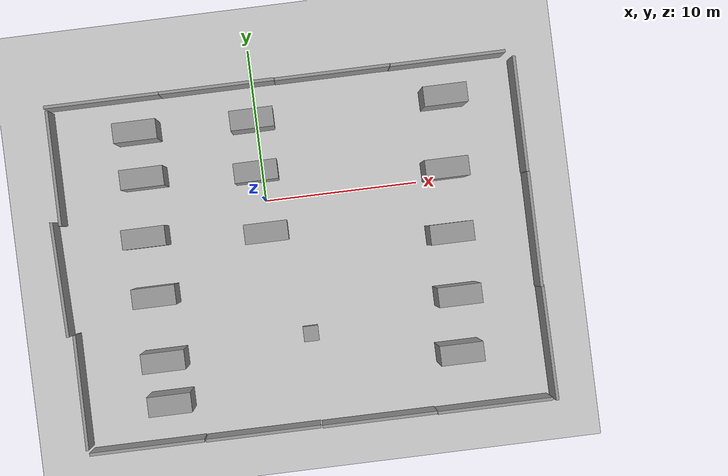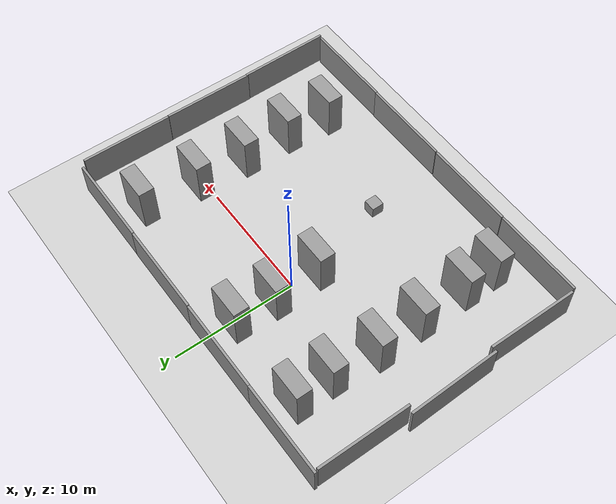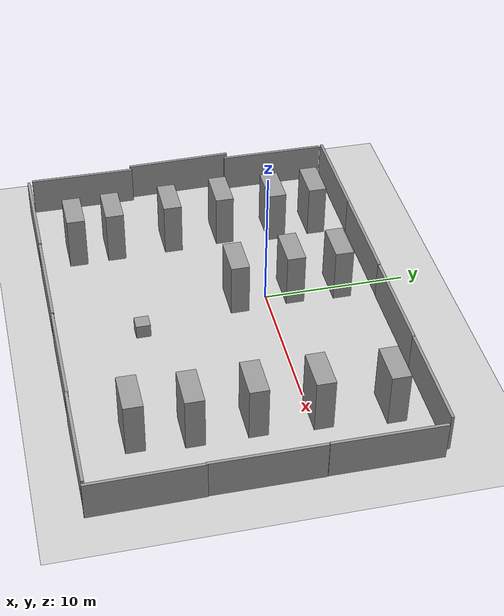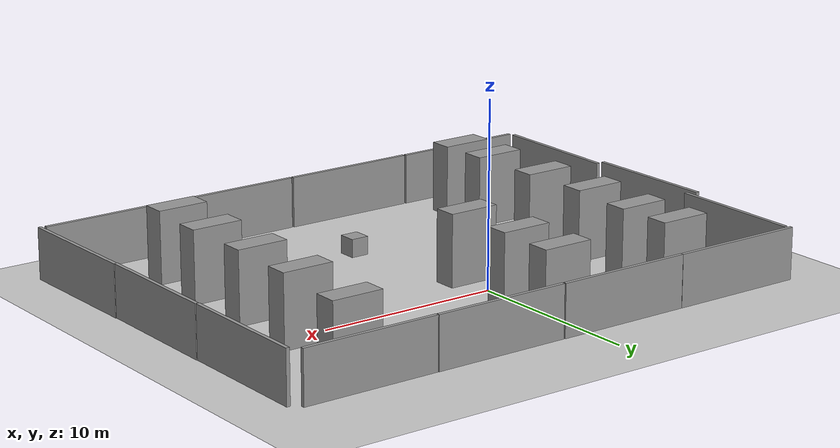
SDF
<sdf version="1.6">
 <world name="default">
  <light name="sun" type="directional">
   <pose>0 0 10 0 -0 0</pose>
   <diffuse>0.8 0.8 0.8 1</diffuse>
   <specular>0.2 0.2 0.2 1</specular>
   <attenuation>
    <range>1000</range>
    <constant>0.9</constant>
    <linear>0.01</linear>
    <quadratic>0.001</quadratic>
   </attenuation>
   <direction>-0.5 0.1 -0.9</direction>
  </light>
  <model name="ground_plane">
   <static>1</static>
   <link name="link">
    <collision name="collision">
     <geometry><plane><normal>0 0 1</normal><size>100 100</size></plane></geometry>
     <surface><friction><ode><mu>100</mu><mu2>50</mu2></ode></friction></surface>
    </collision>
    <visual name="visual">
     <cast_shadows>0</cast_shadows>
     <geometry><plane><normal>0 0 1</normal><size>100 100</size></plane></geometry>
     <material>
      <script><uri>file://media/materials/scripts/gazebo.material</uri><name>Gazebo/Grey</name></script>
     </material>
    </visual>
    <velocity_decay><linear>0</linear><angular>0</angular></velocity_decay>
   </link>
  </model>
  <physics name="default_physics" default="0" type="ode">
   <max_step_size>0.001</max_step_size>
   <real_time_factor>1</real_time_factor>
   <real_time_update_rate>1000</real_time_update_rate>
  </physics>
  <scene><ambient>0.4 0.4 0.4 1</ambient><background>0.7 0.7 0.7 1</background><shadows>1</shadows></scene>
  <spherical_coordinates>
   <surface_model>EARTH_WGS84</surface_model>
   <latitude_deg>0</latitude_deg>
   <longitude_deg>0</longitude_deg>
   <elevation>0</elevation>
   <heading_deg>0</heading_deg>
  </spherical_coordinates>
  <model name="grey_wall">
   <static>1</static>
   <link name="link">
    <pose>0 0 1.4 0 -0 0</pose>
    <collision name="collision"><geometry><box><size>7.5 0.2 2.8</size></box></geometry></collision>
    <visual name="visual">
     <cast_shadows>0</cast_shadows>
     <geometry><box><size>7.5 0.2 2.8</size></box></geometry>
     <material>
      <script>
       <uri>model://grey_wall/materials/scripts</uri>
       <uri>model://grey_wall/materials/textures</uri>
       <name>vrc/grey_wall</name>
      </script>
     </material>
    </visual>
    <velocity_decay><linear>0</linear><angular>0</angular></velocity_decay>
   </link>
   <pose>-9.77961 7.69556 0 0 -0 0</pose>
  </model>
  <model name="grey_wall_0">
   <static>1</static>
   <link name="link">
    <pose>0 0 1.4 0 -0 0</pose>
    <collision name="collision"><geometry><box><size>7.5 0.2 2.8</size></box></geometry></collision>
    <visual name="visual">
     <cast_shadows>0</cast_shadows>
     <geometry><box><size>7.5 0.2 2.8</size></box></geometry>
     <material>
      <script>
       <uri>model://grey_wall/materials/scripts</uri>
       <uri>model://grey_wall/materials/textures</uri>
       <name>vrc/grey_wall</name>
      </script>
     </material>
    </visual>
    <velocity_decay><linear>0</linear><angular>0</angular></velocity_decay>
   </link>
   <pose>5.27661 7.66326 0 0 -0 0</pose>
  </model>
  <model name="grey_wall_1">
   <static>1</static>
   <link name="link">
    <pose>0 0 1.4 0 -0 0</pose>
    <collision name="collision"><geometry><box><size>7.5 0.2 2.8</size></box></geometry></collision>
    <visual name="visual">
     <cast_shadows>0</cast_shadows>
     <geometry><box><size>7.5 0.2 2.8</size></box></geometry>
     <material>
      <script>
       <uri>model://grey_wall/materials/scripts</uri>
       <uri>model://grey_wall/materials/textures</uri>
       <name>vrc/grey_wall</name>
      </script>
     </material>
    </visual>
    <velocity_decay><linear>0</linear><angular>0</angular></velocity_decay>
   </link>
   <pose>-2 -14.9713 0 0 -0 0</pose>
  </model>
  <model name="grey_wall_2">
   <static>1</static>
   <link name="link">
    <pose>0 0 1.4 0 -0 0</pose>
    <collision name="collision"><geometry><box><size>7.5 0.2 2.8</size></box></geometry></collision>
    <visual name="visual">
     <cast_shadows>0</cast_shadows>
     <geometry><box><size>7.5 0.2 2.8</size></box></geometry>
     <material>
      <script>
       <uri>model://grey_wall/materials/scripts</uri>
       <uri>model://grey_wall/materials/textures</uri>
       <name>vrc/grey_wall</name>
      </script>
     </material>
    </visual>
    <velocity_decay><linear>0</linear><angular>0</angular></velocity_decay>
   </link>
   <pose>-13.3992 -10.9229 0 0 0 -1.57722</pose>
  </model>
  <model name="grey_wall_3">
   <static>1</static>
   <link name="link">
    <pose>0 0 1.4 0 -0 0</pose>
    <collision name="collision"><geometry><box><size>7.5 0.2 2.8</size></box></geometry></collision>
    <visual name="visual">
     <cast_shadows>0</cast_shadows>
     <geometry><box><size>7.5 0.2 2.8</size></box></geometry>
     <material>
      <script>
       <uri>model://grey_wall/materials/scripts</uri>
       <uri>model://grey_wall/materials/textures</uri>
       <name>vrc/grey_wall</name>
      </script>
     </material>
    </visual>
    <velocity_decay><linear>0</linear><angular>0</angular></velocity_decay>
   </link>
   <pose>-13.3759 3.69988 0 0 -0 1.5682</pose>
  </model>
  <model name="grey_wall_4">
   <static>1</static>
   <link name="link">
    <pose>0 0 1.4 0 -0 0</pose>
    <collision name="collision"><geometry><box><size>7.5 0.2 2.8</size></box></geometry></collision>
    <visual name="visual">
     <cast_shadows>0</cast_shadows>
     <geometry><box><size>7.5 0.2 2.8</size></box></geometry>
     <material>
      <script>
       <uri>model://grey_wall/materials/scripts</uri>
       <uri>model://grey_wall/materials/textures</uri>
       <name>vrc/grey_wall</name>
      </script>
     </material>
    </visual>
    <velocity_decay><linear>0</linear><angular>0</angular></velocity_decay>
   </link>
   <pose>17.044 3.50827 0 0 -0 1.56755</pose>
  </model>
  <model name="grey_wall_5">
   <static>1</static>
   <link name="link">
    <pose>0 0 1.4 0 -0 0</pose>
    <collision name="collision"><geometry><box><size>7.5 0.2 2.8</size></box></geometry></collision>
    <visual name="visual">
     <cast_shadows>0</cast_shadows>
     <geometry><box><size>7.5 0.2 2.8</size></box></geometry>
     <material>
      <script>
       <uri>model://grey_wall/materials/scripts</uri>
       <uri>model://grey_wall/materials/textures</uri>
       <name>vrc/grey_wall</name>
      </script>
     </material>
    </visual>
    <velocity_decay><linear>0</linear><angular>0</angular></velocity_decay>
   </link>
   <pose>17.046 -4.01974 0 0 -0 1.56663</pose>
  </model>
  <model name="grey_wall_6">
   <static>1</static>
   <link name="link">
    <pose>0 0 1.4 0 -0 0</pose>
    <collision name="collision"><geometry><box><size>7.5 0.2 2.8</size></box></geometry></collision>
    <visual name="visual">
     <cast_shadows>0</cast_shadows>
     <geometry><box><size>7.5 0.2 2.8</size></box></geometry>
     <material>
      <script>
       <uri>model://grey_wall/materials/scripts</uri>
       <uri>model://grey_wall/materials/textures</uri>
       <name>vrc/grey_wall</name>
      </script>
     </material>
    </visual>
    <velocity_decay><linear>0</linear><angular>0</angular></velocity_decay>
   </link>
   <pose>17.1048 -11.4251 0 0 -0 1.57886</pose>
  </model>
  <gravity>0 0 -9.8</gravity>
  <magnetic_field>6e-06 2.3e-05 -4.2e-05</magnetic_field>
  <atmosphere type="adiabatic"/>
  <model name="grey_wall_clone">
   <static>1</static>
   <link name="link">
    <pose>0 0 1.4 0 -0 0</pose>
    <collision name="collision"><geometry><box><size>7.5 0.2 2.8</size></box></geometry></collision>
    <visual name="visual">
     <cast_shadows>0</cast_shadows>
     <geometry><box><size>7.5 0.2 2.8</size></box></geometry>
     <material>
      <script>
       <uri>model://grey_wall/materials/scripts</uri>
       <uri>model://grey_wall/materials/textures</uri>
       <name>vrc/grey_wall</name>
      </script>
     </material>
    </visual>
    <velocity_decay><linear>0</linear><angular>0</angular></velocity_decay>
   </link>
   <pose>12.8069 7.6455 0 0 -0 0</pose>
  </model>
  <model name="grey_wall_clone_0">
   <static>1</static>
   <link name="link">
    <pose>0 0 1.4 0 -0 0</pose>
    <collision name="collision"><geometry><box><size>7.5 0.2 2.8</size></box></geometry></collision>
    <visual name="visual">
     <cast_shadows>0</cast_shadows>
     <geometry><box><size>7.5 0.2 2.8</size></box></geometry>
     <material>
      <script>
       <uri>model://grey_wall/materials/scripts</uri>
       <uri>model://grey_wall/materials/textures</uri>
       <name>vrc/grey_wall</name>
      </script>
     </material>
    </visual>
    <velocity_decay><linear>0</linear><angular>0</angular></velocity_decay>
   </link>
   <pose>5.58895 -15.0018 0 0 -0 0</pose>
  </model>
  <model name="grey_wall_clone_1">
   <static>1</static>
   <link name="link">
    <pose>0 0 1.4 0 -0 0</pose>
    <collision name="collision"><geometry><box><size>7.5 0.2 2.8</size></box></geometry></collision>
    <visual name="visual">
     <cast_shadows>0</cast_shadows>
     <geometry><box><size>7.5 0.2 2.8</size></box></geometry>
     <material>
      <script>
       <uri>model://grey_wall/materials/scripts</uri>
       <uri>model://grey_wall/materials/textures</uri>
       <name>vrc/grey_wall</name>
      </script>
     </material>
    </visual>
    <velocity_decay><linear>0</linear><angular>0</angular></velocity_decay>
   </link>
   <pose>13.098 -15.0411 0 0 -0 0</pose>
  </model>
  <model name="grey_wall_clone_2">
   <static>1</static>
   <link name="link">
    <pose>0 0 1.4 0 -0 0</pose>
    <collision name="collision"><geometry><box><size>7.5 0.2 2.8</size></box></geometry></collision>
    <visual name="visual">
     <cast_shadows>0</cast_shadows>
     <geometry><box><size>7.5 0.2 2.8</size></box></geometry>
     <material>
      <script>
       <uri>model://grey_wall/materials/scripts</uri>
       <uri>model://grey_wall/materials/textures</uri>
       <name>vrc/grey_wall</name>
      </script>
     </material>
    </visual>
    <velocity_decay><linear>0</linear><angular>0</angular></velocity_decay>
   </link>
   <pose>-2.27352 7.68827 0 0 -0 0</pose>
  </model>
  <model name="grey_wall_clone_3">
   <static>1</static>
   <link name="link">
    <pose>0 0 1.4 0 -0 0</pose>
    <collision name="collision"><geometry><box><size>7.5 0.2 2.8</size></box></geometry></collision>
    <visual name="visual">
     <cast_shadows>0</cast_shadows>
     <geometry><box><size>7.5 0.2 2.8</size></box></geometry>
     <material>
      <script>
       <uri>model://grey_wall/materials/scripts</uri>
       <uri>model://grey_wall/materials/textures</uri>
       <name>vrc/grey_wall</name>
      </script>
     </material>
    </visual>
    <velocity_decay><linear>0</linear><angular>0</angular></velocity_decay>
   </link>
   <pose>-9.57517 -14.9459 0 0 -0 0</pose>
  </model>
  <model name="grey_wall_clone_4">
   <static>1</static>
   <link name="link">
    <pose>0 0 1.4 0 -0 0</pose>
    <collision name="collision"><geometry><box><size>7.5 0.2 2.8</size></box></geometry></collision>
    <visual name="visual">
     <cast_shadows>0</cast_shadows>
     <geometry><box><size>7.5 0.2 2.8</size></box></geometry>
     <material>
      <script>
       <uri>model://grey_wall/materials/scripts</uri>
       <uri>model://grey_wall/materials/textures</uri>
       <name>vrc/grey_wall</name>
      </script>
     </material>
    </visual>
    <velocity_decay><linear>0</linear><angular>0</angular></velocity_decay>
   </link>
   <pose>-13.8661 -3.49649 0 0 0 -1.54848</pose>
  </model>
  <model name="unit_box_2_clone">
   <pose>-7.85632 -5.31167 1.95551 0 -1e-06 -0.000287</pose>
   <link name="link">
    <inertial>
     <mass>1</mass>
     <inertia>
      <ixx>0.166667</ixx>
      <ixy>0</ixy>
      <ixz>0</ixz>
      <iyy>0.166667</iyy>
      <iyz>0</iyz>
      <izz>0.166667</izz>
     </inertia>
    </inertial>
    <collision name="collision"><geometry><box><size>2.81535 1.27937 3.91102</size></box></geometry></collision>
    <visual name="visual">
     <geometry><box><size>2.81535 1.27937 3.91102</size></box></geometry>
     <material>
      <script><name>Gazebo/Grey</name><uri>file://media/materials/scripts/gazebo.material</uri></script>
     </material>
    </visual>
   </link>
  </model>
  <model name="unit_box_2_clone_0">
   <pose>-7.77295 -9.50182 1.95551 0 1e-06 -0.000288</pose>
   <link name="link">
    <inertial>
     <mass>1</mass>
     <inertia>
      <ixx>0.166667</ixx>
      <ixy>0</ixy>
      <ixz>0</ixz>
      <iyy>0.166667</iyy>
      <iyz>0</iyz>
      <izz>0.166667</izz>
     </inertia>
    </inertial>
    <collision name="collision"><geometry><box><size>2.81535 1.27937 3.91102</size></box></geometry></collision>
    <visual name="visual">
     <geometry><box><size>2.81535 1.27937 3.91102</size></box></geometry>
     <material>
      <script><name>Gazebo/Grey</name><uri>file://media/materials/scripts/gazebo.material</uri></script>
     </material>
    </visual>
   </link>
  </model>
  <model name="unit_box_2_clone_1">
   <pose>-7.69229 -12.2795 1.95551 0 -1e-06 -0.000287</pose>
   <link name="link">
    <inertial>
     <mass>1</mass>
     <inertia>
      <ixx>0.166667</ixx>
      <ixy>0</ixy>
      <ixz>0</ixz>
      <iyy>0.166667</iyy>
      <iyz>0</iyz>
      <izz>0.166667</izz>
     </inertia>
    </inertial>
    <collision name="collision"><geometry><box><size>2.81535 1.27937 3.91102</size></box></geometry></collision>
    <visual name="visual">
     <geometry><box><size>2.81535 1.27937 3.91102</size></box></geometry>
     <material>
      <script><name>Gazebo/Grey</name><uri>file://media/materials/scripts/gazebo.material</uri></script>
     </material>
    </visual>
   </link>
  </model>
  <model name="unit_box_2_clone_2">
   <pose>-0.244862 5.25172 1.95551 0 -1e-06 -0.000286</pose>
   <link name="link">
    <inertial>
     <mass>1</mass>
     <inertia>
      <ixx>0.166667</ixx>
      <ixy>0</ixy>
      <ixz>0</ixz>
      <iyy>0.166667</iyy>
      <iyz>0</iyz>
      <izz>0.166667</izz>
     </inertia>
    </inertial>
    <collision name="collision"><geometry><box><size>2.81535 1.27937 3.91102</size></box></geometry></collision>
    <visual name="visual">
     <geometry><box><size>2.81535 1.27937 3.91102</size></box></geometry>
     <material>
      <script><name>Gazebo/Grey</name><uri>file://media/materials/scripts/gazebo.material</uri></script>
     </material>
    </visual>
   </link>
  </model>
  <model name="unit_box_2_clone_3">
   <pose>-0.390529 1.88772 1.95551 0 1e-06 -0.000287</pose>
   <link name="link">
    <inertial>
     <mass>1</mass>
     <inertia>
      <ixx>0.166667</ixx>
      <ixy>0</ixy>
      <ixz>0</ixz>
      <iyy>0.166667</iyy>
      <iyz>0</iyz>
      <izz>0.166667</izz>
     </inertia>
    </inertial>
    <collision name="collision"><geometry><box><size>2.81535 1.27937 3.91102</size></box></geometry></collision>
    <visual name="visual">
     <geometry><box><size>2.81535 1.27937 3.91102</size></box></geometry>
     <material>
      <script><name>Gazebo/Grey</name><uri>file://media/materials/scripts/gazebo.material</uri></script>
     </material>
    </visual>
   </link>
  </model>
  <model name="unit_box_2_clone_4">
   <pose>-0.210672 -2.0852 1.95551 0 1e-06 -0.000287</pose>
   <link name="link">
    <inertial>
     <mass>1</mass>
     <inertia>
      <ixx>0.166667</ixx>
      <ixy>0</ixy>
      <ixz>0</ixz>
      <iyy>0.166667</iyy>
      <iyz>0</iyz>
      <izz>0.166667</izz>
     </inertia>
    </inertial>
    <collision name="collision"><geometry><box><size>2.81535 1.27937 3.91102</size></box></geometry></collision>
    <visual name="visual">
     <geometry><box><size>2.81535 1.27937 3.91102</size></box></geometry>
     <material>
      <script><name>Gazebo/Grey</name><uri>file://media/materials/scripts/gazebo.material</uri></script>
     </material>
    </visual>
   </link>
  </model>
  <model name="unit_box_2_clone_5">
   <pose>12.26 5.26111 1.95551 0 -1e-06 -0.000287</pose>
   <link name="link">
    <inertial>
     <mass>1</mass>
     <inertia>
      <ixx>0.166667</ixx>
      <ixy>0</ixy>
      <ixz>0</ixz>
      <iyy>0.166667</iyy>
      <iyz>0</iyz>
      <izz>0.166667</izz>
     </inertia>
    </inertial>
    <collision name="collision"><geometry><box><size>2.81535 1.27937 3.91102</size></box></geometry></collision>
    <visual name="visual">
     <geometry><box><size>2.81535 1.27937 3.91102</size></box></geometry>
     <material>
      <script><name>Gazebo/Grey</name><uri>file://media/materials/scripts/gazebo.material</uri></script>
     </material>
    </visual>
   </link>
  </model>
  <model name="unit_box_2_clone_6">
   <pose>11.8021 0.584545 1.95551 0 -1e-06 -0.000287</pose>
   <link name="link">
    <inertial>
     <mass>1</mass>
     <inertia>
      <ixx>0.166667</ixx>
      <ixy>0</ixy>
      <ixz>0</ixz>
      <iyy>0.166667</iyy>
      <iyz>0</iyz>
      <izz>0.166667</izz>
     </inertia>
    </inertial>
    <collision name="collision"><geometry><box><size>2.81535 1.27937 3.91102</size></box></geometry></collision>
    <visual name="visual">
     <geometry><box><size>2.81535 1.27937 3.91102</size></box></geometry>
     <material>
      <script><name>Gazebo/Grey</name><uri>file://media/materials/scripts/gazebo.material</uri></script>
     </material>
    </visual>
   </link>
  </model>
  <model name="unit_box_2_clone_7">
   <pose>11.5984 -3.5904 1.95551 0 -1e-06 -0.000287</pose>
   <link name="link">
    <inertial>
     <mass>1</mass>
     <inertia>
      <ixx>0.166667</ixx>
      <ixy>0</ixy>
      <ixz>0</ixz>
      <iyy>0.166667</iyy>
      <iyz>0</iyz>
      <izz>0.166667</izz>
     </inertia>
    </inertial>
    <collision name="collision"><geometry><box><size>2.81535 1.27937 3.91102</size></box></geometry></collision>
    <visual name="visual">
     <geometry><box><size>2.81535 1.27937 3.91102</size></box></geometry>
     <material>
      <script><name>Gazebo/Grey</name><uri>file://media/materials/scripts/gazebo.material</uri></script>
     </material>
    </visual>
   </link>
  </model>
  <model name="unit_box_2_clone_8">
   <pose>11.6143 -7.62165 1.95551 0 -1e-06 -0.000287</pose>
   <link name="link">
    <inertial>
     <mass>1</mass>
     <inertia>
      <ixx>0.166667</ixx>
      <ixy>0</ixy>
      <ixz>0</ixz>
      <iyy>0.166667</iyy>
      <iyz>0</iyz>
      <izz>0.166667</izz>
     </inertia>
    </inertial>
    <collision name="collision"><geometry><box><size>2.81535 1.27937 3.91102</size></box></geometry></collision>
    <visual name="visual">
     <geometry><box><size>2.81535 1.27937 3.91102</size></box></geometry>
     <material>
      <script><name>Gazebo/Grey</name><uri>file://media/materials/scripts/gazebo.material</uri></script>
     </material>
    </visual>
   </link>
  </model>
  <model name="unit_box_2_clone_9">
   <pose>11.2921 -11.3415 1.95551 0 -1e-06 -0.000286</pose>
   <link name="link">
    <inertial>
     <mass>1</mass>
     <inertia>
      <ixx>0.166667</ixx>
      <ixy>0</ixy>
      <ixz>0</ixz>
      <iyy>0.166667</iyy>
      <iyz>0</iyz>
      <izz>0.166667</izz>
     </inertia>
    </inertial>
    <collision name="collision"><geometry><box><size>2.81535 1.27937 3.91102</size></box></geometry></collision>
    <visual name="visual">
     <geometry><box><size>2.81535 1.27937 3.91102</size></box></geometry>
     <material>
      <script><name>Gazebo/Grey</name><uri>file://media/materials/scripts/gazebo.material</uri></script>
     </material>
    </visual>
   </link>
  </model>
  <model name="unit_box_3_0">
   <pose>1.84861 -9.05027 0.499999 0 -0 0</pose>
   <link name="link">
    <inertial>
     <mass>1</mass>
     <inertia>
      <ixx>0.166667</ixx>
      <ixy>0</ixy>
      <ixz>0</ixz>
      <iyy>0.166667</iyy>
      <iyz>0</iyz>
      <izz>0.166667</izz>
     </inertia>
    </inertial>
    <collision name="collision">
     <geometry><box><size>0.999986 0.999995 0.999999</size></box></geometry>
    </collision>
    <visual name="visual">
     <geometry><box><size>0.999986 0.999995 0.999999</size></box></geometry>
     <material>
      <script><name>Gazebo/Grey</name><uri>file://media/materials/scripts/gazebo.material</uri></script>
     </material>
    </visual>
   </link>
  </model>
  <model name="unit_box_2_clone_clone">
   <pose>-8.03877 -1.46384 1.95551 0 1e-06 -0.000287</pose>
   <link name="link">
    <inertial>
     <mass>1</mass>
     <inertia>
      <ixx>0.166667</ixx>
      <ixy>0</ixy>
      <ixz>0</ixz>
      <iyy>0.166667</iyy>
      <iyz>0</iyz>
      <izz>0.166667</izz>
     </inertia>
    </inertial>
    <collision name="collision"><geometry><box><size>2.81535 1.27937 3.91102</size></box></geometry></collision>
    <visual name="visual">
     <geometry><box><size>2.81535 1.27937 3.91102</size></box></geometry>
     <material>
      <script><name>Gazebo/Grey</name><uri>file://media/materials/scripts/gazebo.material</uri></script>
     </material>
    </visual>
   </link>
  </model>
  <model name="unit_box_2_clone_clone_0">
   <pose>-7.69039 2.35861 1.95551 0 1e-06 -0.000287</pose>
   <link name="link">
    <inertial>
     <mass>1</mass>
     <inertia>
      <ixx>0.166667</ixx>
      <ixy>0</ixy>
      <ixz>0</ixz>
      <iyy>0.166667</iyy>
      <iyz>0</iyz>
      <izz>0.166667</izz>
     </inertia>
    </inertial>
    <collision name="collision"><geometry><box><size>2.81535 1.27937 3.91102</size></box></geometry></collision>
    <visual name="visual">
     <geometry><box><size>2.81535 1.27937 3.91102</size></box></geometry>
     <material>
      <script><name>Gazebo/Grey</name><uri>file://media/materials/scripts/gazebo.material</uri></script>
     </material>
    </visual>
   </link>
  </model>
  <model name="unit_box_2_clone_clone_1">
   <pose>-7.7763 5.38327 1.95551 0 -1e-06 -0.000287</pose>
   <link name="link">
    <inertial>
     <mass>1</mass>
     <inertia>
      <ixx>0.166667</ixx>
      <ixy>0</ixy>
      <ixz>0</ixz>
      <iyy>0.166667</iyy>
      <iyz>0</iyz>
      <izz>0.166667</izz>
     </inertia>
    </inertial>
    <collision name="collision"><geometry><box><size>2.81535 1.27937 3.91102</size></box></geometry></collision>
    <visual name="visual">
     <geometry><box><size>2.81535 1.27937 3.91102</size></box></geometry>
     <material>
      <script><name>Gazebo/Grey</name><uri>file://media/materials/scripts/gazebo.material</uri></script>
     </material>
    </visual>
   </link>
  </model>
 </world>
</sdf>
